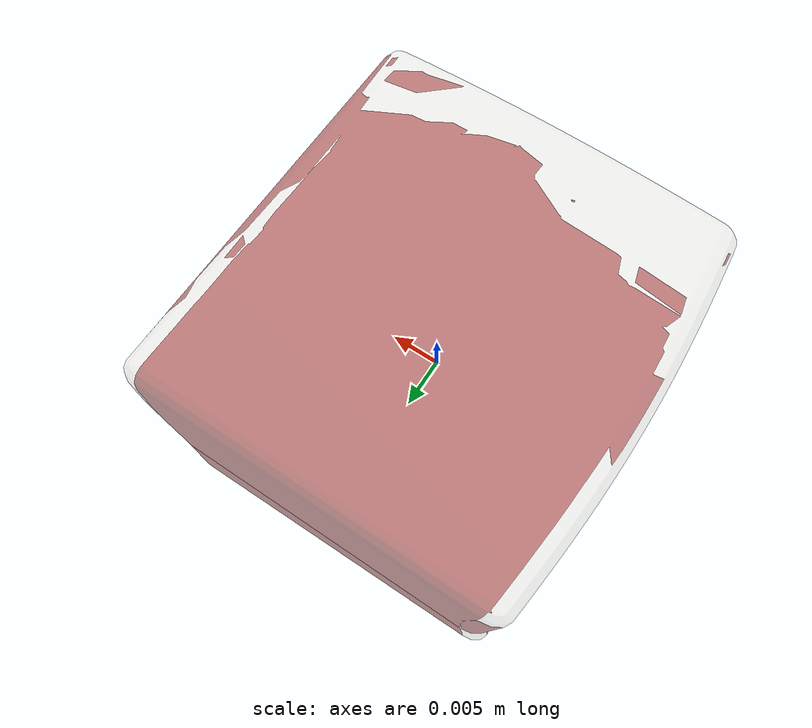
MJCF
<mujoco model="model">
  <compiler angle="radian"/>
  <asset>
    <mesh file="visual/IceCube002.obj" name="IceCube002_vis"/>
    <texture file="visual/T_BC001.png" name="IceCube002_material" type="2d"/>
    <material name="IceCube002_material" rgba="1 1 1 0.21799999475479126" texture="IceCube002_material" shininess="0.2" specular="0.8"/>
    <mesh file="collision/collision_mesh_collision_0.obj" name="IceCube002_collision_mesh_0"/>
    <mesh file="collision/collision_mesh_collision_1.obj" name="IceCube002_collision_mesh_1"/>
  </asset>
  <default>
    <default class="visual">
      <geom conaffinity="0" contype="0" group="1" type="mesh"/>
    </default>
    <default class="collision">
      <geom group="0" rgba="0.5 0 0 0.5"/>
    </default>
    <default class="spawn">
      <geom group="0" rgba="1 1 1 0.5" contype="0" conaffinity="0"/>
      <site group="0" rgba="1 1 1 0.5"/>
    </default>
    <default class="region">
      <geom group="1" conaffinity="0" contype="0" rgba="0 1 0 0" mass="0"/>
    </default>
  </default>
  <worldbody>
    <body>
      <body name="object">
        <geom mesh="IceCube002_vis" type="mesh" solimp="0.998 0.998 0.001" solref="0.001 1" density="100" friction="0.95 0.3 0.1" class="visual" material="IceCube002_material"/>
        <geom class="region" name="reg_bbox" type="box" pos="0.0 0.0 5.249999999994842e-07" size="0.019077 0.019676 0.015959475"/>
        <geom mesh="IceCube002_collision_mesh_0" type="mesh" class="collision"/>
        <geom mesh="IceCube002_collision_mesh_1" type="mesh" class="collision"/>
      </body>
    </body>
  </worldbody>
  <actuator/>
</mujoco>
